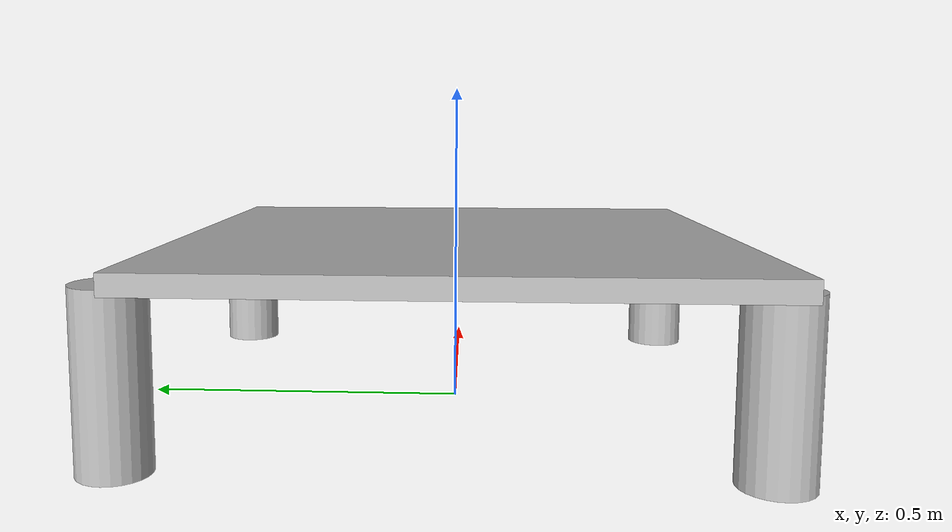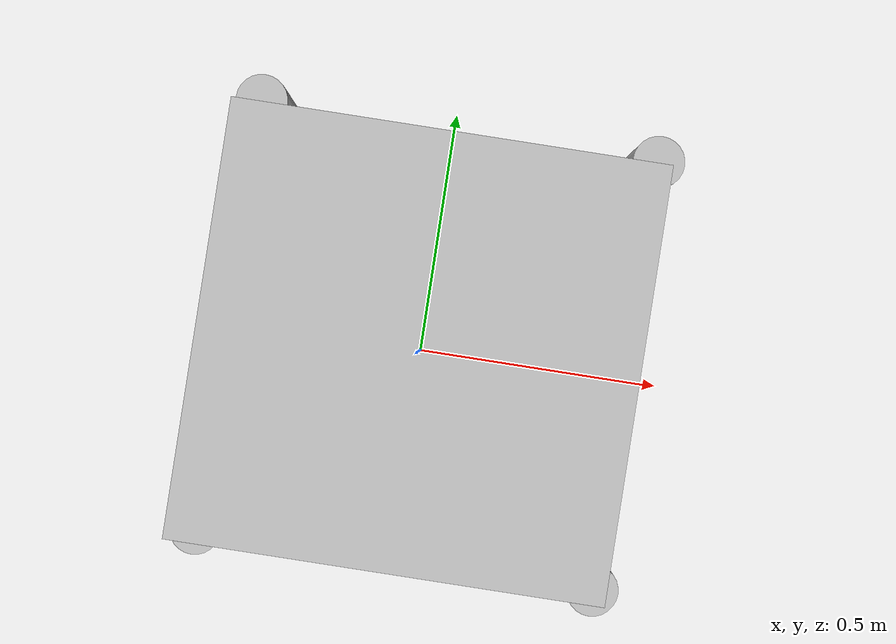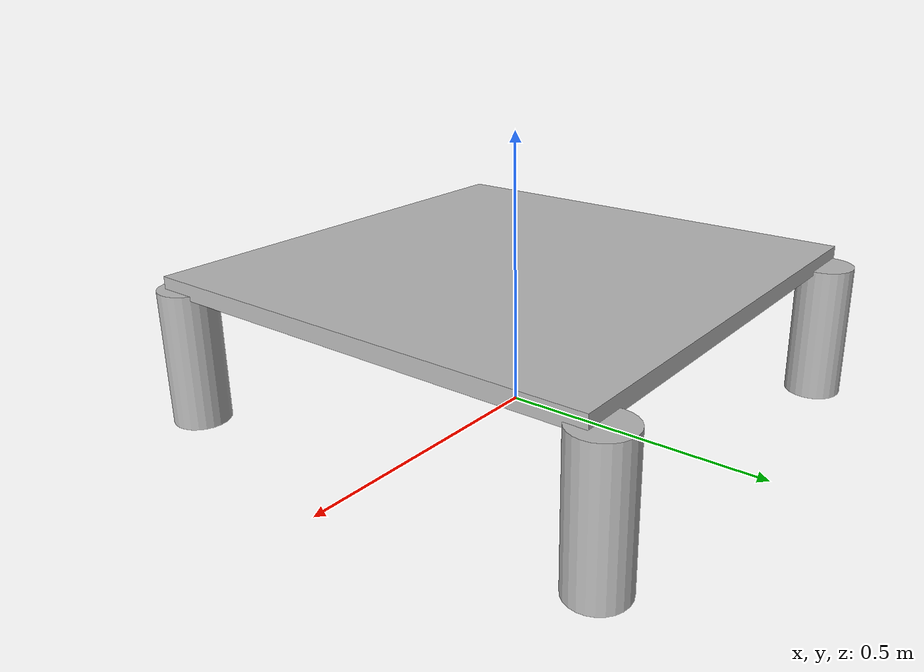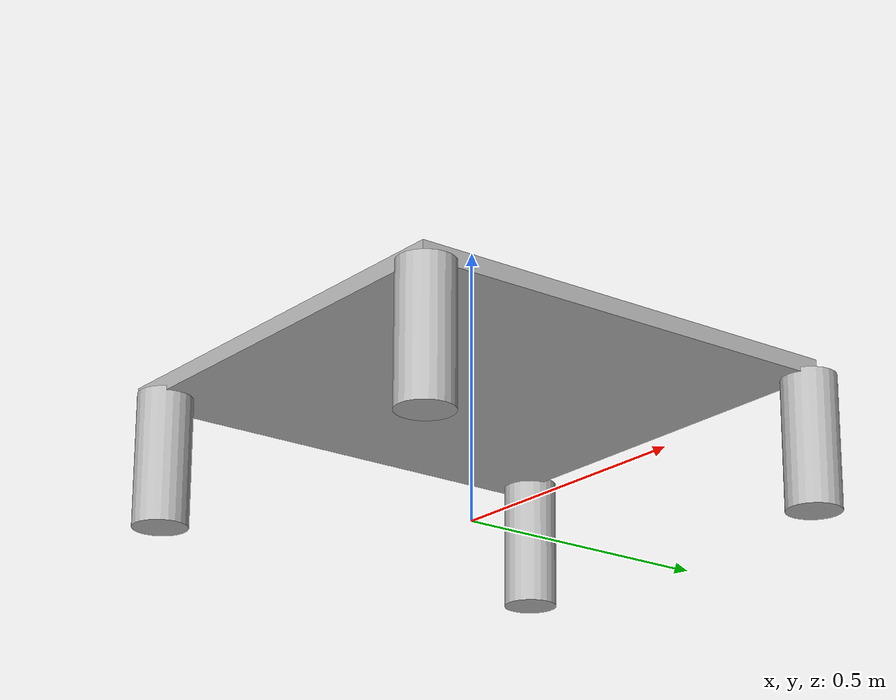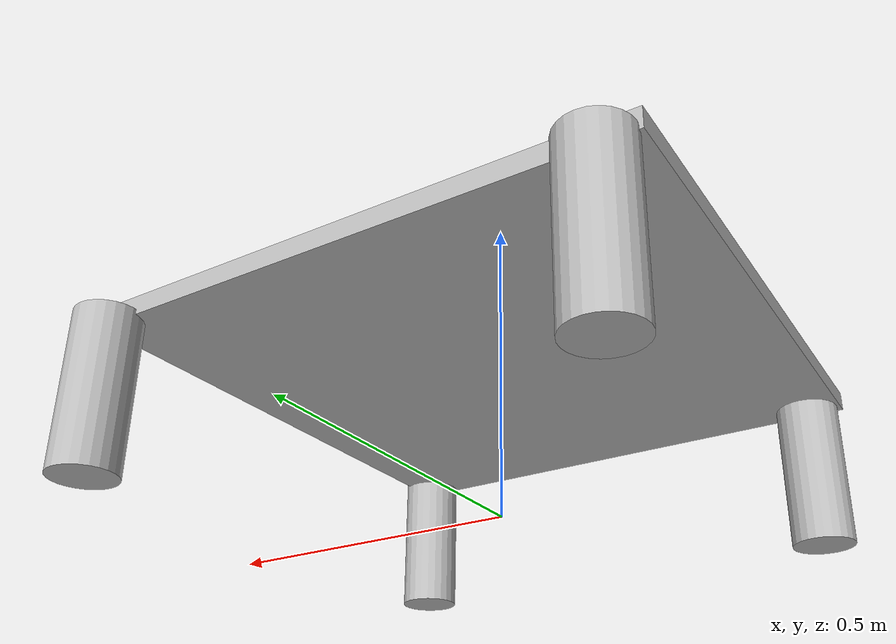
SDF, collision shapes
<?xml version='1.0'?>
<sdf version='1.6'>
  <model name='cart2'>
    <link name='link'>
      <pose frame=''>0 0 0 0 -0 0</pose>
      <inertial>
        <inertia>
          <ixx>0.1</ixx>
          <ixy>0</ixy>
          <ixz>0</ixz>
          <iyy>0.1</iyy>
          <iyz>0</iyz>
          <izz>0.1</izz>
        </inertia>
        <mass>0.01</mass>
        <pose frame=''>0 0 0 0 -0 0</pose>
      </inertial>
      <self_collide>0</self_collide>
      <kinematic>0</kinematic>
      <gravity>1</gravity>
      <visual name='visual'>
        <geometry>
          <mesh>
            <uri>model://cart/meshes/cart.dae</uri>
          </mesh>
        </geometry>
        <pose frame=''>0 0.1 0 0 -0 0</pose>
        <cast_shadows>1</cast_shadows>
        <transparency>0</transparency>
        <material>
          <shader type='vertex'>
            <normal_map>__default__</normal_map>
          </shader>
        </material>
      </visual>
      <collision name='front_right_leg'>
        <laser_retro>0</laser_retro>
        <max_contacts>10</max_contacts>
        <pose frame=''>0.4 -0.4 0.125 0 -0 0</pose>
        <geometry>
          <cylinder>
            <radius>0.05</radius>
            <length>0.245793</length>
          </cylinder>
        </geometry>
        <surface>
          <friction>
            <ode>
              <mu>1</mu>
              <mu2>1</mu2>
              <fdir1>0 0 0</fdir1>
              <slip1>0</slip1>
              <slip2>0</slip2>
            </ode>
            <torsional>
              <coefficient>1</coefficient>
              <patch_radius>0</patch_radius>
              <surface_radius>0</surface_radius>
              <use_patch_radius>1</use_patch_radius>
              <ode>
                <slip>0</slip>
              </ode>
            </torsional>
          </friction>
          <bounce>
            <restitution_coefficient>0</restitution_coefficient>
            <threshold>1e+06</threshold>
          </bounce>
          <contact>
            <collide_without_contact>0</collide_without_contact>
            <collide_without_contact_bitmask>1</collide_without_contact_bitmask>
            <collide_bitmask>1</collide_bitmask>
            <ode>
              <soft_cfm>0</soft_cfm>
              <soft_erp>0.2</soft_erp>
              <kp>1e+13</kp>
              <kd>1</kd>
              <max_vel>0.01</max_vel>
              <min_depth>0</min_depth>
            </ode>
            <bullet>
              <split_impulse>1</split_impulse>
              <split_impulse_penetration_threshold>-0.01</split_impulse_penetration_threshold>
              <soft_cfm>0</soft_cfm>
              <soft_erp>0.2</soft_erp>
              <kp>1e+13</kp>
              <kd>1</kd>
            </bullet>
          </contact>
        </surface>
      </collision>
      <collision name='back_left_leg'>
        <laser_retro>0</laser_retro>
        <max_contacts>10</max_contacts>
        <pose frame=''>-0.37 0.43 0.125 0 -0 0</pose>
        <geometry>
          <cylinder>
            <radius>0.05</radius>
            <length>0.245793</length>
          </cylinder>
        </geometry>
        <surface>
          <friction>
            <ode>
              <mu>1</mu>
              <mu2>1</mu2>
              <fdir1>0 0 0</fdir1>
              <slip1>0</slip1>
              <slip2>0</slip2>
            </ode>
            <torsional>
              <coefficient>1</coefficient>
              <patch_radius>0</patch_radius>
              <surface_radius>0</surface_radius>
              <use_patch_radius>1</use_patch_radius>
              <ode>
                <slip>0</slip>
              </ode>
            </torsional>
          </friction>
          <bounce>
            <restitution_coefficient>0</restitution_coefficient>
            <threshold>1e+06</threshold>
          </bounce>
          <contact>
            <collide_without_contact>0</collide_without_contact>
            <collide_without_contact_bitmask>1</collide_without_contact_bitmask>
            <collide_bitmask>1</collide_bitmask>
            <ode>
              <soft_cfm>0</soft_cfm>
              <soft_erp>0.2</soft_erp>
              <kp>1e+13</kp>
              <kd>1</kd>
              <max_vel>0.01</max_vel>
              <min_depth>0</min_depth>
            </ode>
            <bullet>
              <split_impulse>1</split_impulse>
              <split_impulse_penetration_threshold>-0.01</split_impulse_penetration_threshold>
              <soft_cfm>0</soft_cfm>
              <soft_erp>0.2</soft_erp>
              <kp>1e+13</kp>
              <kd>1</kd>
            </bullet>
          </contact>
        </surface>
      </collision>
      <collision name='back_right_leg'>
        <laser_retro>0</laser_retro>
        <max_contacts>10</max_contacts>
        <pose frame=''>-0.37 -0.4 0.125 0 -0 0</pose>
        <geometry>
          <cylinder>
            <radius>0.05</radius>
            <length>0.245793</length>
          </cylinder>
        </geometry>
        <surface>
          <friction>
            <ode>
              <mu>1</mu>
              <mu2>1</mu2>
              <fdir1>0 0 0</fdir1>
              <slip1>0</slip1>
              <slip2>0</slip2>
            </ode>
            <torsional>
              <coefficient>1</coefficient>
              <patch_radius>0</patch_radius>
              <surface_radius>0</surface_radius>
              <use_patch_radius>1</use_patch_radius>
              <ode>
                <slip>0</slip>
              </ode>
            </torsional>
          </friction>
          <bounce>
            <restitution_coefficient>0</restitution_coefficient>
            <threshold>1e+06</threshold>
          </bounce>
          <contact>
            <collide_without_contact>0</collide_without_contact>
            <collide_without_contact_bitmask>1</collide_without_contact_bitmask>
            <collide_bitmask>1</collide_bitmask>
            <ode>
              <soft_cfm>0</soft_cfm>
              <soft_erp>0.2</soft_erp>
              <kp>1e+13</kp>
              <kd>1</kd>
              <max_vel>0.01</max_vel>
              <min_depth>0</min_depth>
            </ode>
            <bullet>
              <split_impulse>1</split_impulse>
              <split_impulse_penetration_threshold>-0.01</split_impulse_penetration_threshold>
              <soft_cfm>0</soft_cfm>
              <soft_erp>0.2</soft_erp>
              <kp>1e+13</kp>
              <kd>1</kd>
            </bullet>
          </contact>
        </surface>
      </collision>
      <collision name='surface'>
        <laser_retro>0</laser_retro>
        <max_contacts>100</max_contacts>
        <pose frame=''>0 0 0.255 0 -0 0</pose>
        <geometry>
          <box>
            <size>0.85 0.85 0.03</size>
          </box>
        </geometry>
        <surface>
          <friction>
            <ode>
              <mu>100000</mu>
              <mu2>100000</mu2>
              <fdir1>0 0 0</fdir1>
              <slip1>0</slip1>
              <slip2>0</slip2>
            </ode>
            <torsional>
              <coefficient>1</coefficient>
              <patch_radius>0</patch_radius>
              <surface_radius>0</surface_radius>
              <use_patch_radius>1</use_patch_radius>
              <ode>
                <slip>0</slip>
              </ode>
            </torsional>
          </friction>
          <bounce>
            <restitution_coefficient>0</restitution_coefficient>
            <threshold>1e+06</threshold>
          </bounce>
          <contact>
            <collide_without_contact>0</collide_without_contact>
            <collide_without_contact_bitmask>1</collide_without_contact_bitmask>
            <collide_bitmask>1</collide_bitmask>
            <ode>
              <soft_cfm>0</soft_cfm>
              <soft_erp>0.2</soft_erp>
              <kp>1e+13</kp>
              <kd>1</kd>
              <max_vel>0.01</max_vel>
              <min_depth>0</min_depth>
            </ode>
            <bullet>
              <split_impulse>1</split_impulse>
              <split_impulse_penetration_threshold>-0.01</split_impulse_penetration_threshold>
              <soft_cfm>0</soft_cfm>
              <soft_erp>0.2</soft_erp>
              <kp>1e+13</kp>
              <kd>1</kd>
            </bullet>
          </contact>
        </surface>
      </collision>
      <collision name='front_left_leg'>
        <laser_retro>0</laser_retro>
        <max_contacts>10</max_contacts>
        <pose frame=''>0.4 0.43 0.125 0 -0 0</pose>
        <geometry>
          <cylinder>
            <radius>0.05</radius>
            <length>0.245793</length>
          </cylinder>
        </geometry>
        <surface>
          <friction>
            <ode>
              <mu>1</mu>
              <mu2>1</mu2>
              <fdir1>0 0 0</fdir1>
              <slip1>0</slip1>
              <slip2>0</slip2>
            </ode>
            <torsional>
              <coefficient>1</coefficient>
              <patch_radius>0</patch_radius>
              <surface_radius>0</surface_radius>
              <use_patch_radius>1</use_patch_radius>
              <ode>
                <slip>0</slip>
              </ode>
            </torsional>
          </friction>
          <bounce>
            <restitution_coefficient>0</restitution_coefficient>
            <threshold>1e+06</threshold>
          </bounce>
          <contact>
            <collide_without_contact>0</collide_without_contact>
            <collide_without_contact_bitmask>1</collide_without_contact_bitmask>
            <collide_bitmask>1</collide_bitmask>
            <ode>
              <soft_cfm>0</soft_cfm>
              <soft_erp>0.2</soft_erp>
              <kp>1e+13</kp>
              <kd>1</kd>
              <max_vel>0.01</max_vel>
              <min_depth>0</min_depth>
            </ode>
            <bullet>
              <split_impulse>1</split_impulse>
              <split_impulse_penetration_threshold>-0.01</split_impulse_penetration_threshold>
              <soft_cfm>0</soft_cfm>
              <soft_erp>0.2</soft_erp>
              <kp>1e+13</kp>
              <kd>1</kd>
            </bullet>
          </contact>
        </surface>
      </collision>
    </link>
    <static>0</static>
    <allow_auto_disable>1</allow_auto_disable>
  </model>
</sdf>
